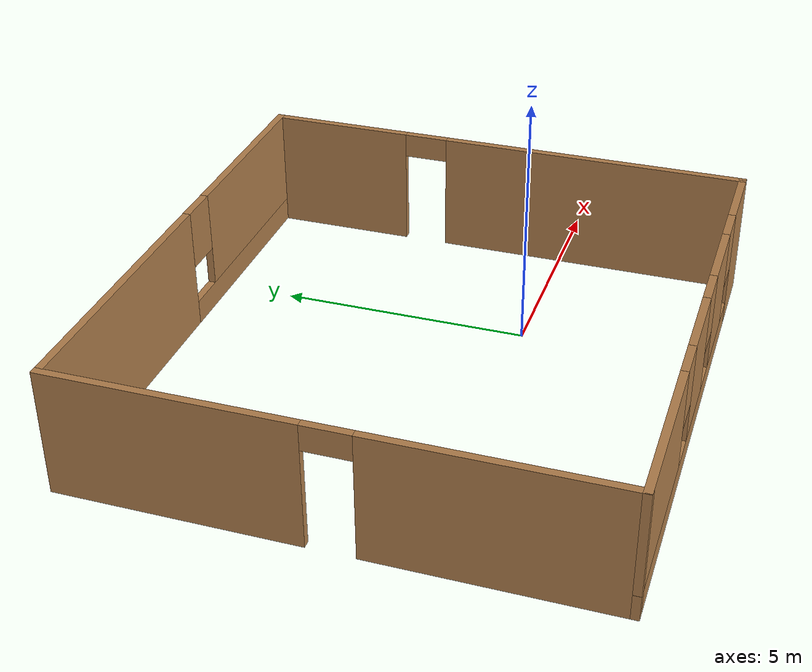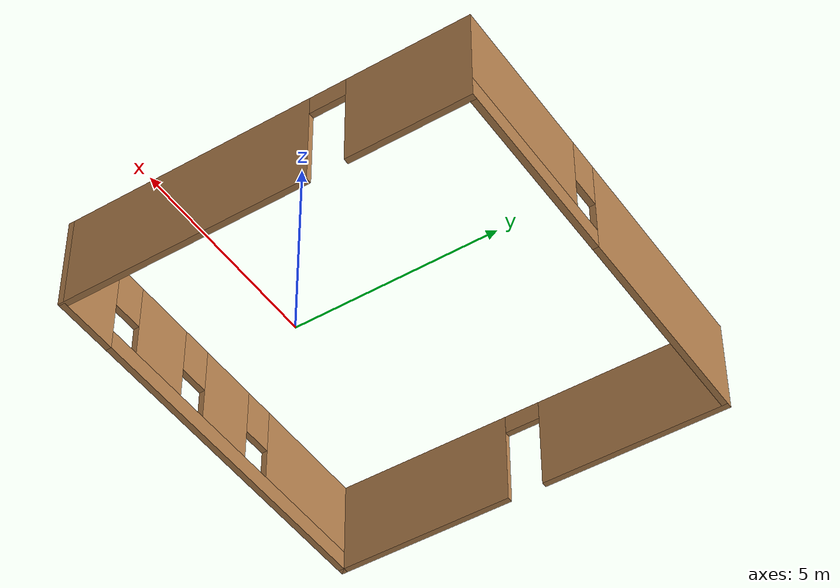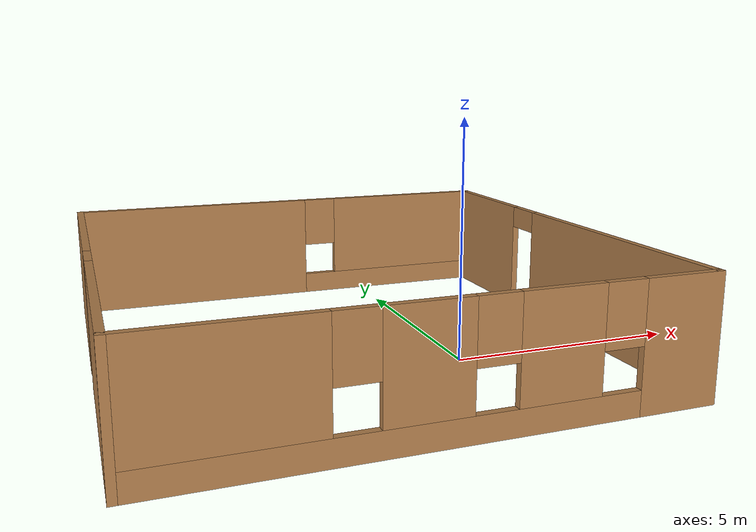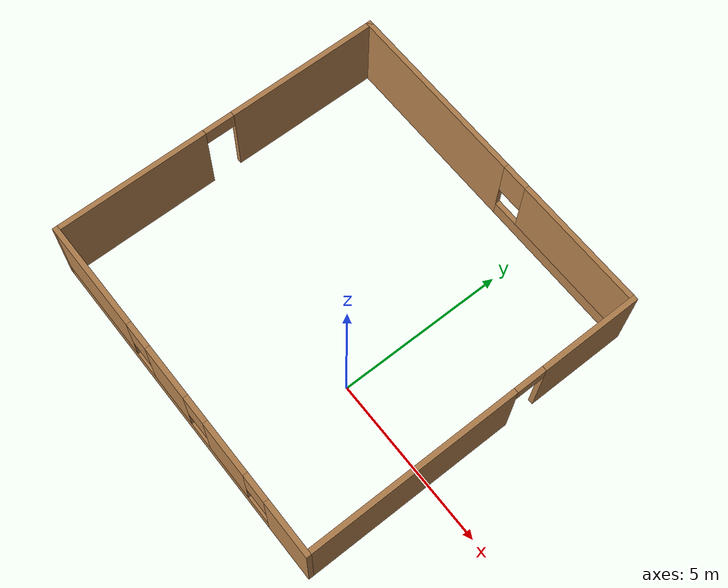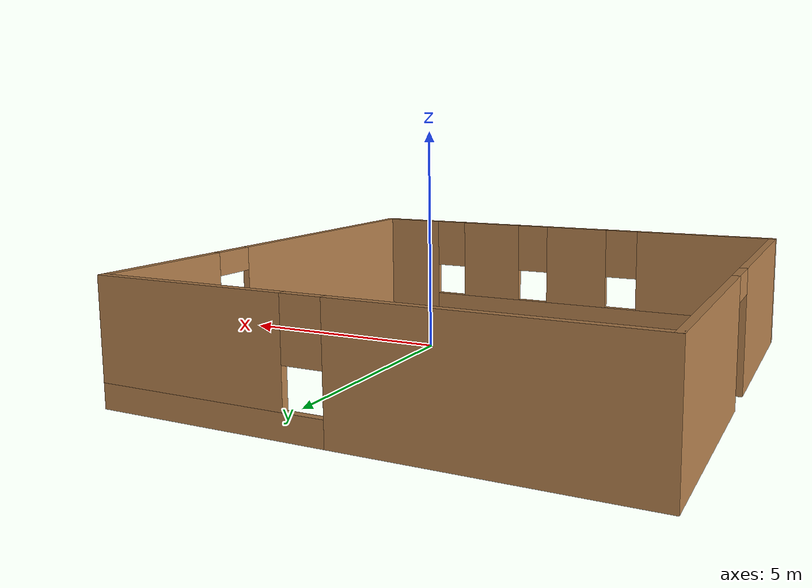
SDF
<?xml version='1.0'?>
<sdf version='1.7'>
  <model name='test1'>
    <pose>-1.965 1.37 0 0 -0 0</pose>
    <link name='Wall_0'>
      <pose>0 -5.05 0 0 -0 3.14159</pose>
      <visual name='Wall_0_Visual_0'>
        <pose>-4.4421 0 1.25 0 -0 0</pose>
        <geometry>
          <box>
            <size>1.6158 0.15 2.5</size>
          </box>
        </geometry>
        <material>
          <script>
            <uri>file://media/materials/scripts/gazebo.material</uri>
            <name>Gazebo/Wood</name>
          </script>
          <ambient>1 1 1 1</ambient>
        </material>
        <meta>
          <layer>0</layer>
        </meta>
      </visual>
      <collision name='Wall_0_Collision_0'>
        <geometry>
          <box>
            <size>1.6158 0.15 2.5</size>
          </box>
        </geometry>
        <pose>-4.4421 0 1.25 0 -0 0</pose>
      </collision>
      <visual name='Wall_0_Visual_1'>
        <pose>0.807899 0 0.25 0 -0 0</pose>
        <geometry>
          <box>
            <size>8.8842 0.15 0.5</size>
          </box>
        </geometry>
        <material>
          <script>
            <uri>file://media/materials/scripts/gazebo.material</uri>
            <name>Gazebo/Wood</name>
          </script>
          <ambient>1 1 1 1</ambient>
        </material>
        <meta>
          <layer>0</layer>
        </meta>
      </visual>
      <collision name='Wall_0_Collision_1'>
        <geometry>
          <box>
            <size>8.8842 0.15 0.5</size>
          </box>
        </geometry>
        <pose>0.807899 0 0.25 0 -0 0</pose>
      </collision>
      <visual name='Wall_0_Visual_2'>
        <pose>-2.03812 0 1.5 0 -0 0</pose>
        <geometry>
          <box>
            <size>1.59216 0.15 2</size>
          </box>
        </geometry>
        <material>
          <script>
            <uri>file://media/materials/scripts/gazebo.material</uri>
            <name>Gazebo/Wood</name>
          </script>
          <ambient>1 1 1 1</ambient>
        </material>
        <meta>
          <layer>0</layer>
        </meta>
      </visual>
      <collision name='Wall_0_Collision_2'>
        <geometry>
          <box>
            <size>1.59216 0.15 2</size>
          </box>
        </geometry>
        <pose>-2.03812 0 1.5 0 -0 0</pose>
      </collision>
      <visual name='Wall_0_Visual_3'>
        <pose>0.354032 0 1.5 0 -0 0</pose>
        <geometry>
          <box>
            <size>1.59216 0.15 2</size>
          </box>
        </geometry>
        <material>
          <script>
            <uri>file://media/materials/scripts/gazebo.material</uri>
            <name>Gazebo/Wood</name>
          </script>
          <ambient>1 1 1 1</ambient>
        </material>
        <meta>
          <layer>0</layer>
        </meta>
      </visual>
      <collision name='Wall_0_Collision_3'>
        <geometry>
          <box>
            <size>1.59216 0.15 2</size>
          </box>
        </geometry>
        <pose>0.354032 0 1.5 0 -0 0</pose>
      </collision>
      <visual name='Wall_0_Visual_4'>
        <pose>3.60005 0 1.5 0 -0 0</pose>
        <geometry>
          <box>
            <size>3.29989 0.15 2</size>
          </box>
        </geometry>
        <material>
          <script>
            <uri>file://media/materials/scripts/gazebo.material</uri>
            <name>Gazebo/Wood</name>
          </script>
          <ambient>1 1 1 1</ambient>
        </material>
        <meta>
          <layer>0</layer>
        </meta>
      </visual>
      <collision name='Wall_0_Collision_4'>
        <geometry>
          <box>
            <size>3.29989 0.15 2</size>
          </box>
        </geometry>
        <pose>3.60005 0 1.5 0 -0 0</pose>
      </collision>
      <visual name='Wall_0_Visual_5'>
        <pose>-3.2342 0 1.9 0 -0 0</pose>
        <geometry>
          <box>
            <size>0.8 0.15 1.2</size>
          </box>
        </geometry>
        <material>
          <script>
            <uri>file://media/materials/scripts/gazebo.material</uri>
            <name>Gazebo/Wood</name>
          </script>
          <ambient>1 1 1 1</ambient>
        </material>
        <meta>
          <layer>0</layer>
        </meta>
      </visual>
      <collision name='Wall_0_Collision_5'>
        <geometry>
          <box>
            <size>0.8 0.15 1.2</size>
          </box>
        </geometry>
        <pose>-3.2342 0 1.9 0 -0 0</pose>
      </collision>
      <visual name='Wall_0_Visual_6'>
        <pose>-0.842046 0 1.9 0 -0 0</pose>
        <geometry>
          <box>
            <size>0.8 0.15 1.2</size>
          </box>
        </geometry>
        <material>
          <script>
            <uri>file://media/materials/scripts/gazebo.material</uri>
            <name>Gazebo/Wood</name>
          </script>
          <ambient>1 1 1 1</ambient>
        </material>
        <meta>
          <layer>0</layer>
        </meta>
      </visual>
      <collision name='Wall_0_Collision_6'>
        <geometry>
          <box>
            <size>0.8 0.15 1.2</size>
          </box>
        </geometry>
        <pose>-0.842046 0 1.9 0 -0 0</pose>
      </collision>
      <visual name='Wall_0_Visual_7'>
        <pose>1.55011 0 1.9 0 -0 0</pose>
        <geometry>
          <box>
            <size>0.8 0.15 1.2</size>
          </box>
        </geometry>
        <material>
          <script>
            <uri>file://media/materials/scripts/gazebo.material</uri>
            <name>Gazebo/Wood</name>
          </script>
          <ambient>1 1 1 1</ambient>
        </material>
        <meta>
          <layer>0</layer>
        </meta>
      </visual>
      <collision name='Wall_0_Collision_7'>
        <geometry>
          <box>
            <size>0.8 0.15 1.2</size>
          </box>
        </geometry>
        <pose>1.55011 0 1.9 0 -0 0</pose>
      </collision>
    </link>
    <link name='Wall_1'>
      <pose>-5.175 0 0 0 -0 1.5708</pose>
      <visual name='Wall_1_Visual_0'>
        <pose>-2.80005 0 1.25 0 -0 0</pose>
        <geometry>
          <box>
            <size>4.64991 0.15 2.5</size>
          </box>
        </geometry>
        <material>
          <script>
            <uri>file://media/materials/scripts/gazebo.material</uri>
            <name>Gazebo/Wood</name>
          </script>
          <ambient>1 1 1 1</ambient>
        </material>
        <meta>
          <layer>0</layer>
        </meta>
      </visual>
      <collision name='Wall_1_Collision_0'>
        <geometry>
          <box>
            <size>4.64991 0.15 2.5</size>
          </box>
        </geometry>
        <pose>-2.80005 0 1.25 0 -0 0</pose>
      </collision>
      <visual name='Wall_1_Visual_1'>
        <pose>2.77495 0 1.25 0 -0 0</pose>
        <geometry>
          <box>
            <size>4.70009 0.15 2.5</size>
          </box>
        </geometry>
        <material>
          <script>
            <uri>file://media/materials/scripts/gazebo.material</uri>
            <name>Gazebo/Wood</name>
          </script>
          <ambient>1 1 1 1</ambient>
        </material>
        <meta>
          <layer>0</layer>
        </meta>
      </visual>
      <collision name='Wall_1_Collision_1'>
        <geometry>
          <box>
            <size>4.70009 0.15 2.5</size>
          </box>
        </geometry>
        <pose>2.77495 0 1.25 0 -0 0</pose>
      </collision>
      <visual name='Wall_1_Visual_2'>
        <pose>-0.025093 0 2.25 0 -0 0</pose>
        <geometry>
          <box>
            <size>0.9 0.15 0.5</size>
          </box>
        </geometry>
        <material>
          <script>
            <uri>file://media/materials/scripts/gazebo.material</uri>
            <name>Gazebo/Wood</name>
          </script>
          <ambient>1 1 1 1</ambient>
        </material>
        <meta>
          <layer>0</layer>
        </meta>
      </visual>
      <collision name='Wall_1_Collision_2'>
        <geometry>
          <box>
            <size>0.9 0.15 0.5</size>
          </box>
        </geometry>
        <pose>-0.025093 0 2.25 0 -0 0</pose>
      </collision>
    </link>
    <link name='Wall_2'>
      <pose>0 5.05 0 0 -0 0</pose>
      <visual name='Wall_2_Visual_0'>
        <pose>-2.40398 0 1.25 0 -0 0</pose>
        <geometry>
          <box>
            <size>5.69205 0.15 2.5</size>
          </box>
        </geometry>
        <material>
          <script>
            <uri>file://media/materials/scripts/gazebo.material</uri>
            <name>Gazebo/Wood</name>
          </script>
          <ambient>1 1 1 1</ambient>
        </material>
        <meta>
          <layer>0</layer>
        </meta>
      </visual>
      <collision name='Wall_2_Collision_0'>
        <geometry>
          <box>
            <size>5.69205 0.15 2.5</size>
          </box>
        </geometry>
        <pose>-2.40398 0 1.25 0 -0 0</pose>
      </collision>
      <visual name='Wall_2_Visual_1'>
        <pose>2.84602 0 0.25 0 -0 0</pose>
        <geometry>
          <box>
            <size>4.80795 0.15 0.5</size>
          </box>
        </geometry>
        <material>
          <script>
            <uri>file://media/materials/scripts/gazebo.material</uri>
            <name>Gazebo/Wood</name>
          </script>
          <ambient>1 1 1 1</ambient>
        </material>
        <meta>
          <layer>0</layer>
        </meta>
      </visual>
      <collision name='Wall_2_Collision_1'>
        <geometry>
          <box>
            <size>4.80795 0.15 0.5</size>
          </box>
        </geometry>
        <pose>2.84602 0 0.25 0 -0 0</pose>
      </collision>
      <visual name='Wall_2_Visual_2'>
        <pose>3.24602 0 1.5 0 -0 0</pose>
        <geometry>
          <box>
            <size>4.00795 0.15 2</size>
          </box>
        </geometry>
        <material>
          <script>
            <uri>file://media/materials/scripts/gazebo.material</uri>
            <name>Gazebo/Wood</name>
          </script>
          <ambient>1 1 1 1</ambient>
        </material>
        <meta>
          <layer>0</layer>
        </meta>
      </visual>
      <collision name='Wall_2_Collision_2'>
        <geometry>
          <box>
            <size>4.00795 0.15 2</size>
          </box>
        </geometry>
        <pose>3.24602 0 1.5 0 -0 0</pose>
      </collision>
      <visual name='Wall_2_Visual_3'>
        <pose>0.842046 0 1.9 0 -0 0</pose>
        <geometry>
          <box>
            <size>0.8 0.15 1.2</size>
          </box>
        </geometry>
        <material>
          <script>
            <uri>file://media/materials/scripts/gazebo.material</uri>
            <name>Gazebo/Wood</name>
          </script>
          <ambient>1 1 1 1</ambient>
        </material>
        <meta>
          <layer>0</layer>
        </meta>
      </visual>
      <collision name='Wall_2_Collision_3'>
        <geometry>
          <box>
            <size>0.8 0.15 1.2</size>
          </box>
        </geometry>
        <pose>0.842046 0 1.9 0 -0 0</pose>
      </collision>
    </link>
    <link name='Wall_3'>
      <pose>5.175 0 0 0 -0 -1.5708</pose>
      <visual name='Wall_3_Visual_0'>
        <pose>-3.61924 0 1.25 0 -0 0</pose>
        <geometry>
          <box>
            <size>3.01151 0.15 2.5</size>
          </box>
        </geometry>
        <material>
          <script>
            <uri>file://media/materials/scripts/gazebo.material</uri>
            <name>Gazebo/Wood</name>
          </script>
          <ambient>1 1 1 1</ambient>
        </material>
        <meta>
          <layer>0</layer>
        </meta>
      </visual>
      <collision name='Wall_3_Collision_0'>
        <geometry>
          <box>
            <size>3.01151 0.15 2.5</size>
          </box>
        </geometry>
        <pose>-3.61924 0 1.25 0 -0 0</pose>
      </collision>
      <visual name='Wall_3_Visual_1'>
        <pose>1.95576 0 1.25 0 -0 0</pose>
        <geometry>
          <box>
            <size>6.33849 0.15 2.5</size>
          </box>
        </geometry>
        <material>
          <script>
            <uri>file://media/materials/scripts/gazebo.material</uri>
            <name>Gazebo/Wood</name>
          </script>
          <ambient>1 1 1 1</ambient>
        </material>
        <meta>
          <layer>0</layer>
        </meta>
      </visual>
      <collision name='Wall_3_Collision_1'>
        <geometry>
          <box>
            <size>6.33849 0.15 2.5</size>
          </box>
        </geometry>
        <pose>1.95576 0 1.25 0 -0 0</pose>
      </collision>
      <visual name='Wall_3_Visual_2'>
        <pose>-1.66349 0 2.25 0 -0 0</pose>
        <geometry>
          <box>
            <size>0.9 0.15 0.5</size>
          </box>
        </geometry>
        <material>
          <script>
            <uri>file://media/materials/scripts/gazebo.material</uri>
            <name>Gazebo/Wood</name>
          </script>
          <ambient>1 1 1 1</ambient>
        </material>
        <meta>
          <layer>0</layer>
        </meta>
      </visual>
      <collision name='Wall_3_Collision_2'>
        <geometry>
          <box>
            <size>0.9 0.15 0.5</size>
          </box>
        </geometry>
        <pose>-1.66349 0 2.25 0 -0 0</pose>
      </collision>
    </link>
    <static>1</static>
  </model>
</sdf>
